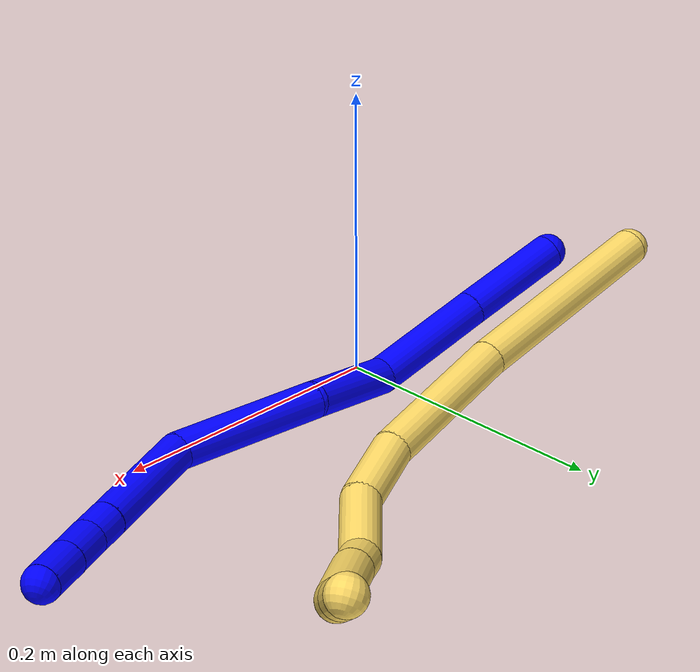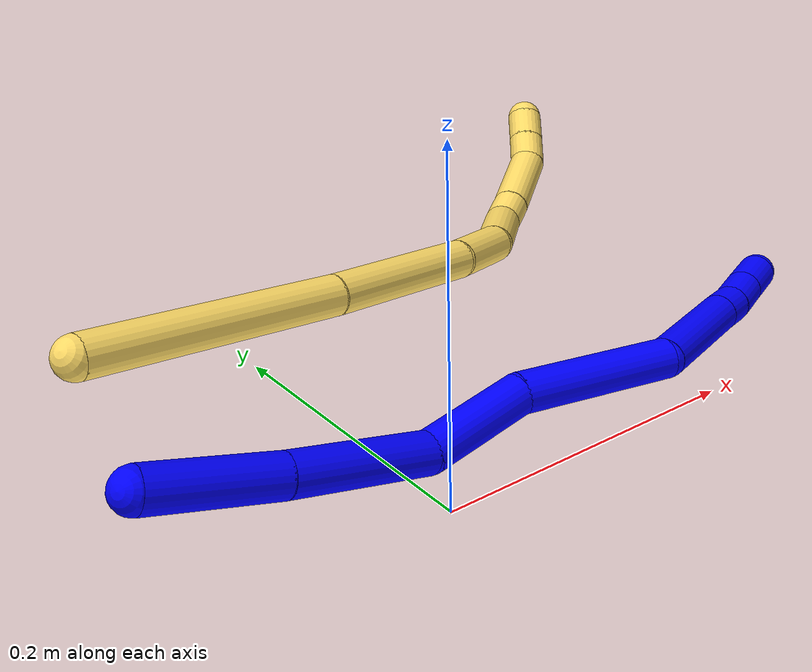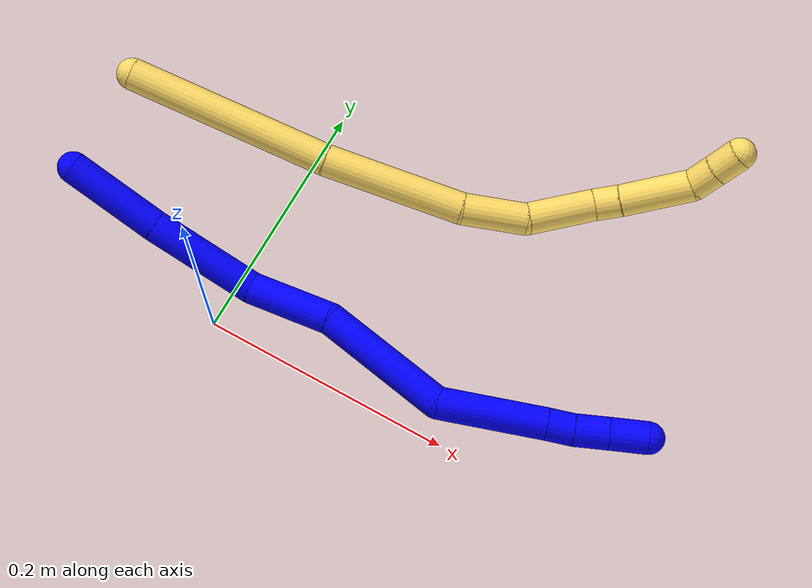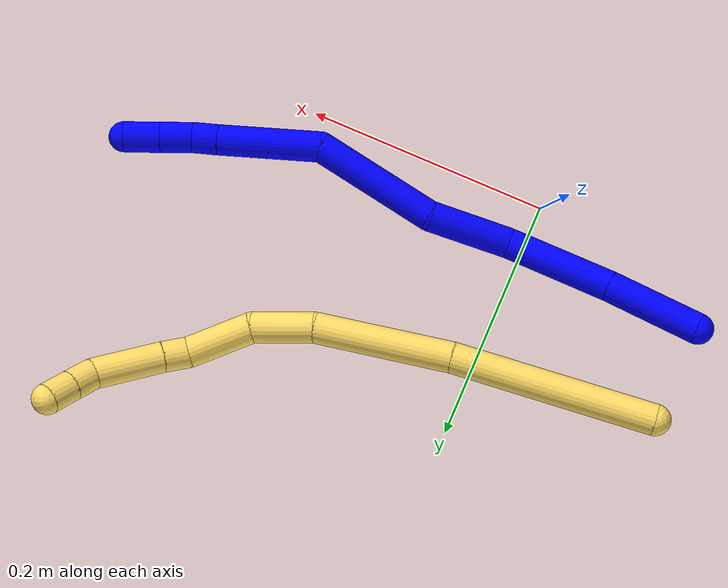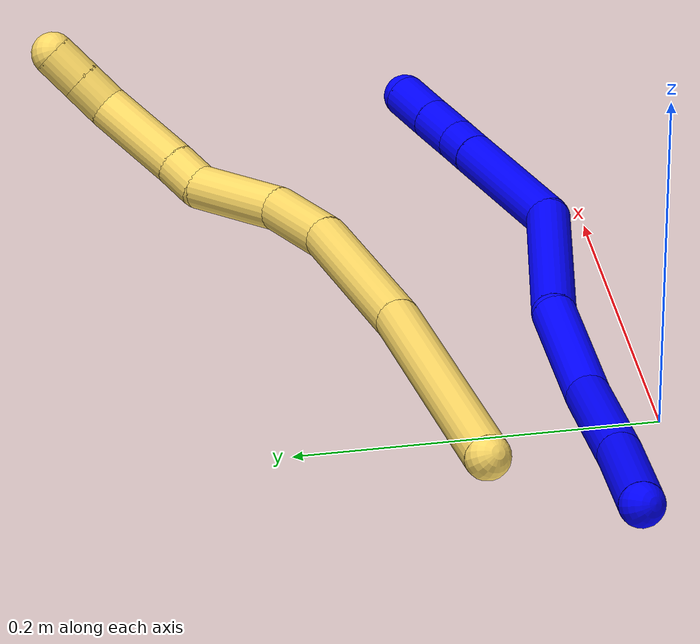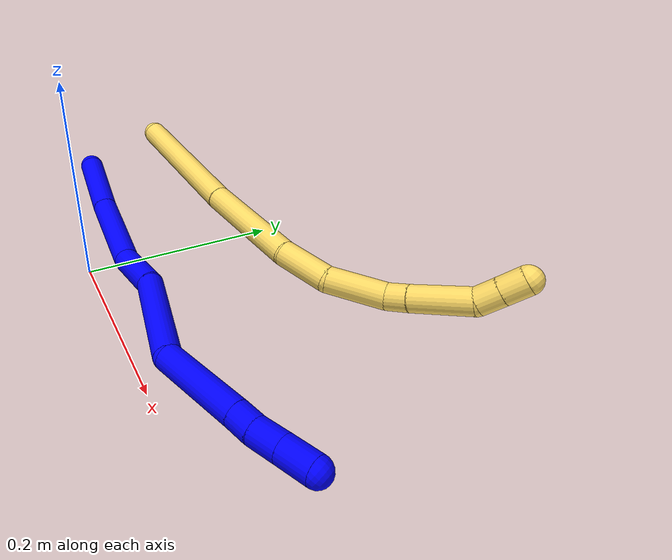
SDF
<sdf version="1.7">
 <world name="default">
  <model name="1">
   <static>0</static>
   <link name="1">
    <collision name="collision-cylinder-e_1_1_4">
     <pose>0.010834 0.017873 0.032506 -0.502709 0.284149 -0.073427</pose>
     <geometry><cylinder><radius>0.0125</radius><length>0.077291</length></cylinder></geometry>
     <surface>
      <friction><ode><mu>1.16</mu><mu2>1.16</mu2><slip1>0</slip1><slip2>0</slip2></ode></friction>
      <contact><ode><kp>1e+06</kp><kd>1</kd><max_vel>0</max_vel><min_depth>0.001</min_depth></ode></contact>
     </surface>
    </collision>
    <visual name="visual-cylinder-e_1_1_4">
     <pose>0.010834 0.017873 0.032506 -0.502709 0.284149 -0.073427</pose>
     <geometry><cylinder><radius>0.0125</radius><length>0.077291</length></cylinder></geometry>
     <material><ambient>0 0 1 1</ambient></material>
    </visual>
    <collision name="collision-cylinder-e_2_4_5">
     <pose>0.035583 0.054255 0.102959 -0.453812 0.318366 -0.074098</pose>
     <geometry><cylinder><radius>0.0125</radius><length>0.088908</length></cylinder></geometry>
     <surface>
      <friction><ode><mu>1.16</mu><mu2>1.16</mu2><slip1>0</slip1><slip2>0</slip2></ode></friction>
      <contact><ode><kp>1e+06</kp><kd>1</kd><max_vel>0</max_vel><min_depth>0.001</min_depth></ode></contact>
     </surface>
    </collision>
    <visual name="visual-cylinder-e_2_4_5">
     <pose>0.035583 0.054255 0.102959 -0.453812 0.318366 -0.074098</pose>
     <geometry><cylinder><radius>0.0125</radius><length>0.088908</length></cylinder></geometry>
     <material><ambient>0 0 1 1</ambient></material>
    </visual>
    <collision name="collision-cylinder-e_3_5_6">
     <pose>0.071445 0.081576 0.165996 -0.337769 0.689994 -0.122398</pose>
     <geometry><cylinder><radius>0.0125</radius><length>0.06896</length></cylinder></geometry>
     <surface>
      <friction><ode><mu>1.16</mu><mu2>1.16</mu2><slip1>0</slip1><slip2>0</slip2></ode></friction>
      <contact><ode><kp>1e+06</kp><kd>1</kd><max_vel>0</max_vel><min_depth>0.001</min_depth></ode></contact>
     </surface>
    </collision>
    <visual name="visual-cylinder-e_3_5_6">
     <pose>0.071445 0.081576 0.165996 -0.337769 0.689994 -0.122398</pose>
     <geometry><cylinder><radius>0.0125</radius><length>0.06896</length></cylinder></geometry>
     <material><ambient>0 0 1 1</ambient></material>
    </visual>
    <collision name="collision-cylinder-e_4_6_7">
     <pose>0.118508 0.117175 0.227926 -0.628688 0.503925 -0.167006</pose>
     <geometry><cylinder><radius>0.0125</radius><length>0.104029</length></cylinder></geometry>
     <surface>
      <friction><ode><mu>1.16</mu><mu2>1.16</mu2><slip1>0</slip1><slip2>0</slip2></ode></friction>
      <contact><ode><kp>1e+06</kp><kd>1</kd><max_vel>0</max_vel><min_depth>0.001</min_depth></ode></contact>
     </surface>
    </collision>
    <visual name="visual-cylinder-e_4_6_7">
     <pose>0.118508 0.117175 0.227926 -0.628688 0.503925 -0.167006</pose>
     <geometry><cylinder><radius>0.0125</radius><length>0.104029</length></cylinder></geometry>
     <material><ambient>0 0 1 1</ambient></material>
    </visual>
    <collision name="collision-cylinder-e_5_7_8">
     <pose>0.162561 0.146533 0.302039 -0.068882 0.469108 -0.016466</pose>
     <geometry><cylinder><radius>0.0125</radius><length>0.083773</length></cylinder></geometry>
     <surface>
      <friction><ode><mu>1.16</mu><mu2>1.16</mu2><slip1>0</slip1><slip2>0</slip2></ode></friction>
      <contact><ode><kp>1e+06</kp><kd>1</kd><max_vel>0</max_vel><min_depth>0.001</min_depth></ode></contact>
     </surface>
    </collision>
    <visual name="visual-cylinder-e_5_7_8">
     <pose>0.162561 0.146533 0.302039 -0.068882 0.469108 -0.016466</pose>
     <geometry><cylinder><radius>0.0125</radius><length>0.083773</length></cylinder></geometry>
     <material><ambient>0 0 1 1</ambient></material>
    </visual>
    <collision name="collision-cylinder-e_6_8_9">
     <pose>0.186131 0.150025 0.348695 -0.097809 0.456773 -0.022752</pose>
     <geometry><cylinder><radius>0.0125</radius><length>0.02101</length></cylinder></geometry>
     <surface>
      <friction><ode><mu>1.16</mu><mu2>1.16</mu2><slip1>0</slip1><slip2>0</slip2></ode></friction>
      <contact><ode><kp>1e+06</kp><kd>1</kd><max_vel>0</max_vel><min_depth>0.001</min_depth></ode></contact>
     </surface>
    </collision>
    <visual name="visual-cylinder-e_6_8_9">
     <pose>0.186131 0.150025 0.348695 -0.097809 0.456773 -0.022752</pose>
     <geometry><cylinder><radius>0.0125</radius><length>0.02101</length></cylinder></geometry>
     <material><ambient>0 0 1 1</ambient></material>
    </visual>
    <collision name="collision-cylinder-e_7_9_10">
     <pose>0.197442 0.150614 0.369515 0.028985 0.528293 0.00784</pose>
     <geometry><cylinder><radius>0.0125</radius><length>0.026497</length></cylinder></geometry>
     <surface>
      <friction><ode><mu>1.16</mu><mu2>1.16</mu2><slip1>0</slip1><slip2>0</slip2></ode></friction>
      <contact><ode><kp>1e+06</kp><kd>1</kd><max_vel>0</max_vel><min_depth>0.001</min_depth></ode></contact>
     </surface>
    </collision>
    <visual name="visual-cylinder-e_7_9_10">
     <pose>0.197442 0.150614 0.369515 0.028985 0.528293 0.00784</pose>
     <geometry><cylinder><radius>0.0125</radius><length>0.026497</length></cylinder></geometry>
     <material><ambient>0 0 1 1</ambient></material>
    </visual>
    <collision name="collision-cylinder-e_8_10_2">
     <pose>0.21162 0.15007 0.39367 0.016713 0.532795 0.004561</pose>
     <geometry><cylinder><radius>0.0125</radius><length>0.029533</length></cylinder></geometry>
     <surface>
      <friction><ode><mu>1.16</mu><mu2>1.16</mu2><slip1>0</slip1><slip2>0</slip2></ode></friction>
      <contact><ode><kp>1e+06</kp><kd>1</kd><max_vel>0</max_vel><min_depth>0.001</min_depth></ode></contact>
     </surface>
    </collision>
    <visual name="visual-cylinder-e_8_10_2">
     <pose>0.21162 0.15007 0.39367 0.016713 0.532795 0.004561</pose>
     <geometry><cylinder><radius>0.0125</radius><length>0.029533</length></cylinder></geometry>
     <material><ambient>0 0 1 1</ambient></material>
    </visual>
    <collision name="collision-sphere-2">
     <pose>0.219121 0.149857 0.406388 0 -0 0</pose>
     <geometry><sphere><radius>0.0125</radius></sphere></geometry>
     <surface>
      <friction><ode><mu>1.16</mu><mu2>1.16</mu2><slip1>0</slip1><slip2>0</slip2></ode></friction>
      <contact><ode><kp>1e+06</kp><kd>1</kd><max_vel>0</max_vel><min_depth>0.001</min_depth></ode></contact>
     </surface>
    </collision>
    <visual name="visual-sphere-2">
     <pose>0.219121 0.149857 0.406388 0 -0 0</pose>
     <geometry><sphere><radius>0.0125</radius></sphere></geometry>
     <material><ambient>0 0 1 1</ambient></material>
    </visual>
    <collision name="collision-sphere-10">
     <pose>0.20412 0.150282 0.380953 0 -0 0</pose>
     <geometry><sphere><radius>0.0125</radius></sphere></geometry>
     <surface>
      <friction><ode><mu>1.16</mu><mu2>1.16</mu2><slip1>0</slip1><slip2>0</slip2></ode></friction>
      <contact><ode><kp>1e+06</kp><kd>1</kd><max_vel>0</max_vel><min_depth>0.001</min_depth></ode></contact>
     </surface>
    </collision>
    <visual name="visual-sphere-10">
     <pose>0.20412 0.150282 0.380953 0 -0 0</pose>
     <geometry><sphere><radius>0.0125</radius></sphere></geometry>
     <material><ambient>0 0 1 1</ambient></material>
    </visual>
    <collision name="collision-sphere-9">
     <pose>0.190764 0.150946 0.358078 0 -0 0</pose>
     <geometry><sphere><radius>0.0125</radius></sphere></geometry>
     <surface>
      <friction><ode><mu>1.16</mu><mu2>1.16</mu2><slip1>0</slip1><slip2>0</slip2></ode></friction>
      <contact><ode><kp>1e+06</kp><kd>1</kd><max_vel>0</max_vel><min_depth>0.001</min_depth></ode></contact>
     </surface>
    </collision>
    <visual name="visual-sphere-9">
     <pose>0.190764 0.150946 0.358078 0 -0 0</pose>
     <geometry><sphere><radius>0.0125</radius></sphere></geometry>
     <material><ambient>0 0 1 1</ambient></material>
    </visual>
    <collision name="collision-sphere-4">
     <pose>0.021668 0.035746 0.065013 0 -0 0</pose>
     <geometry><sphere><radius>0.0125</radius></sphere></geometry>
     <surface>
      <friction><ode><mu>1.16</mu><mu2>1.16</mu2><slip1>0</slip1><slip2>0</slip2></ode></friction>
      <contact><ode><kp>1e+06</kp><kd>1</kd><max_vel>0</max_vel><min_depth>0.001</min_depth></ode></contact>
     </surface>
    </collision>
    <visual name="visual-sphere-4">
     <pose>0.021668 0.035746 0.065013 0 -0 0</pose>
     <geometry><sphere><radius>0.0125</radius></sphere></geometry>
     <material><ambient>0 0 1 1</ambient></material>
    </visual>
    <collision name="collision-sphere-1">
     <geometry><sphere><radius>0.0125</radius></sphere></geometry>
     <surface>
      <friction><ode><mu>1.16</mu><mu2>1.16</mu2><slip1>0</slip1><slip2>0</slip2></ode></friction>
      <contact><ode><kp>1e+06</kp><kd>1</kd><max_vel>0</max_vel><min_depth>0.001</min_depth></ode></contact>
     </surface>
    </collision>
    <visual name="visual-sphere-1">
     <geometry><sphere><radius>0.0125</radius></sphere></geometry>
     <material><ambient>0 0 1 1</ambient></material>
    </visual>
    <collision name="collision-sphere-8">
     <pose>0.181497 0.149104 0.339312 0 -0 0</pose>
     <geometry><sphere><radius>0.0125</radius></sphere></geometry>
     <surface>
      <friction><ode><mu>1.16</mu><mu2>1.16</mu2><slip1>0</slip1><slip2>0</slip2></ode></friction>
      <contact><ode><kp>1e+06</kp><kd>1</kd><max_vel>0</max_vel><min_depth>0.001</min_depth></ode></contact>
     </surface>
    </collision>
    <visual name="visual-sphere-8">
     <pose>0.181497 0.149104 0.339312 0 -0 0</pose>
     <geometry><sphere><radius>0.0125</radius></sphere></geometry>
     <material><ambient>0 0 1 1</ambient></material>
    </visual>
    <collision name="collision-sphere-5">
     <pose>0.049497 0.072764 0.140906 0 -0 0</pose>
     <geometry><sphere><radius>0.0125</radius></sphere></geometry>
     <surface>
      <friction><ode><mu>1.16</mu><mu2>1.16</mu2><slip1>0</slip1><slip2>0</slip2></ode></friction>
      <contact><ode><kp>1e+06</kp><kd>1</kd><max_vel>0</max_vel><min_depth>0.001</min_depth></ode></contact>
     </surface>
    </collision>
    <visual name="visual-sphere-5">
     <pose>0.049497 0.072764 0.140906 0 -0 0</pose>
     <geometry><sphere><radius>0.0125</radius></sphere></geometry>
     <material><ambient>0 0 1 1</ambient></material>
    </visual>
    <collision name="collision-sphere-6">
     <pose>0.093393 0.090388 0.191086 0 -0 0</pose>
     <geometry><sphere><radius>0.0125</radius></sphere></geometry>
     <surface>
      <friction><ode><mu>1.16</mu><mu2>1.16</mu2><slip1>0</slip1><slip2>0</slip2></ode></friction>
      <contact><ode><kp>1e+06</kp><kd>1</kd><max_vel>0</max_vel><min_depth>0.001</min_depth></ode></contact>
     </surface>
    </collision>
    <visual name="visual-sphere-6">
     <pose>0.093393 0.090388 0.191086 0 -0 0</pose>
     <geometry><sphere><radius>0.0125</radius></sphere></geometry>
     <material><ambient>0 0 1 1</ambient></material>
    </visual>
    <collision name="collision-sphere-7">
     <pose>0.143624 0.143961 0.264766 0 -0 0</pose>
     <geometry><sphere><radius>0.0125</radius></sphere></geometry>
     <surface>
      <friction><ode><mu>1.16</mu><mu2>1.16</mu2><slip1>0</slip1><slip2>0</slip2></ode></friction>
      <contact><ode><kp>1e+06</kp><kd>1</kd><max_vel>0</max_vel><min_depth>0.001</min_depth></ode></contact>
     </surface>
    </collision>
    <visual name="visual-sphere-7">
     <pose>0.143624 0.143961 0.264766 0 -0 0</pose>
     <geometry><sphere><radius>0.0125</radius></sphere></geometry>
     <material><ambient>0 0 1 1</ambient></material>
    </visual>
    <inertial>
     <pose>0.100532 0.095741 0.20174 0 -0 0</pose>
     <mass>0.5</mass>
     <inertia>
      <ixx>0.000251</ixx>
      <ixy>0</ixy>
      <ixz>0</ixz>
      <iyy>0.000251</iyy>
      <iyz>0</iyz>
      <izz>-0.000199</izz>
     </inertia>
    </inertial>
   </link>
   <pose>-0.147573 0.043227 0.053307 -2.70166 -1.01964 -0.004393</pose>
  </model>
  <model name="5">
   <static>0</static>
   <link name="5">
    <collision name="collision-cylinder-e_1_1_4">
     <pose>0.024584 0.043221 0.064473 -0.59056 0.30673 -0.093968</pose>
     <geometry><cylinder><radius>0.0125</radius><length>0.162839</length></cylinder></geometry>
     <surface>
      <friction><ode><mu>1.16</mu><mu2>1.16</mu2><slip1>0</slip1><slip2>0</slip2></ode></friction>
      <contact><ode><kp>1e+06</kp><kd>1</kd><max_vel>0</max_vel><min_depth>0.001</min_depth></ode></contact>
     </surface>
    </collision>
    <visual name="visual-cylinder-e_1_1_4">
     <pose>0.024584 0.043221 0.064473 -0.59056 0.30673 -0.093968</pose>
     <geometry><cylinder><radius>0.0125</radius><length>0.162839</length></cylinder></geometry>
     <material><ambient>1 0.858824 0.4 1</ambient></material>
    </visual>
    <collision name="collision-cylinder-e_2_4_5">
     <pose>0.068555 0.112245 0.17389 -0.521177 0.357974 -0.096412</pose>
     <geometry><cylinder><radius>0.0125</radius><length>0.110665</length></cylinder></geometry>
     <surface>
      <friction><ode><mu>1.16</mu><mu2>1.16</mu2><slip1>0</slip1><slip2>0</slip2></ode></friction>
      <contact><ode><kp>1e+06</kp><kd>1</kd><max_vel>0</max_vel><min_depth>0.001</min_depth></ode></contact>
     </surface>
    </collision>
    <visual name="visual-cylinder-e_2_4_5">
     <pose>0.068555 0.112245 0.17389 -0.521177 0.357974 -0.096412</pose>
     <geometry><cylinder><radius>0.0125</radius><length>0.110665</length></cylinder></geometry>
     <material><ambient>1 0.858824 0.4 1</ambient></material>
    </visual>
    <collision name="collision-cylinder-e_3_5_6">
     <pose>0.098979 0.145166 0.240351 -0.319448 0.453182 -0.074247</pose>
     <geometry><cylinder><radius>0.0125</radius><length>0.050415</length></cylinder></geometry>
     <surface>
      <friction><ode><mu>1.16</mu><mu2>1.16</mu2><slip1>0</slip1><slip2>0</slip2></ode></friction>
      <contact><ode><kp>1e+06</kp><kd>1</kd><max_vel>0</max_vel><min_depth>0.001</min_depth></ode></contact>
     </surface>
    </collision>
    <visual name="visual-cylinder-e_3_5_6">
     <pose>0.098979 0.145166 0.240351 -0.319448 0.453182 -0.074247</pose>
     <geometry><cylinder><radius>0.0125</radius><length>0.050415</length></cylinder></geometry>
     <material><ambient>1 0.858824 0.4 1</ambient></material>
    </visual>
    <collision name="collision-cylinder-e_4_6_7">
     <pose>0.126686 0.150975 0.28382 0.05951 0.648644 0.020012</pose>
     <geometry><cylinder><radius>0.0125</radius><length>0.055191</length></cylinder></geometry>
     <surface>
      <friction><ode><mu>1.16</mu><mu2>1.16</mu2><slip1>0</slip1><slip2>0</slip2></ode></friction>
      <contact><ode><kp>1e+06</kp><kd>1</kd><max_vel>0</max_vel><min_depth>0.001</min_depth></ode></contact>
     </surface>
    </collision>
    <visual name="visual-cylinder-e_4_6_7">
     <pose>0.126686 0.150975 0.28382 0.05951 0.648644 0.020012</pose>
     <geometry><cylinder><radius>0.0125</radius><length>0.055191</length></cylinder></geometry>
     <material><ambient>1 0.858824 0.4 1</ambient></material>
    </visual>
    <collision name="collision-cylinder-e_5_7_8">
     <pose>0.151682 0.15241 0.311917 -0.419757 0.89093 -0.202722</pose>
     <geometry><cylinder><radius>0.0125</radius><length>0.021409</length></cylinder></geometry>
     <surface>
      <friction><ode><mu>1.16</mu><mu2>1.16</mu2><slip1>0</slip1><slip2>0</slip2></ode></friction>
      <contact><ode><kp>1e+06</kp><kd>1</kd><max_vel>0</max_vel><min_depth>0.001</min_depth></ode></contact>
     </surface>
    </collision>
    <visual name="visual-cylinder-e_5_7_8">
     <pose>0.151682 0.15241 0.311917 -0.419757 0.89093 -0.202722</pose>
     <geometry><cylinder><radius>0.0125</radius><length>0.021409</length></cylinder></geometry>
     <material><ambient>1 0.858824 0.4 1</ambient></material>
    </visual>
    <collision name="collision-cylinder-e_6_8_9">
     <pose>0.182471 0.160867 0.333832 -0.347677 0.929457 -0.175633</pose>
     <geometry><cylinder><radius>0.0125</radius><length>0.056072</length></cylinder></geometry>
     <surface>
      <friction><ode><mu>1.16</mu><mu2>1.16</mu2><slip1>0</slip1><slip2>0</slip2></ode></friction>
      <contact><ode><kp>1e+06</kp><kd>1</kd><max_vel>0</max_vel><min_depth>0.001</min_depth></ode></contact>
     </surface>
    </collision>
    <visual name="visual-cylinder-e_6_8_9">
     <pose>0.182471 0.160867 0.333832 -0.347677 0.929457 -0.175633</pose>
     <geometry><cylinder><radius>0.0125</radius><length>0.056072</length></cylinder></geometry>
     <material><ambient>1 0.858824 0.4 1</ambient></material>
    </visual>
    <collision name="collision-cylinder-e_7_9_10">
     <pose>0.215358 0.167311 0.351562 -0.356269 1.3727 -0.292878</pose>
     <geometry><cylinder><radius>0.0125</radius><length>0.021259</length></cylinder></geometry>
     <surface>
      <friction><ode><mu>1.16</mu><mu2>1.16</mu2><slip1>0</slip1><slip2>0</slip2></ode></friction>
      <contact><ode><kp>1e+06</kp><kd>1</kd><max_vel>0</max_vel><min_depth>0.001</min_depth></ode></contact>
     </surface>
    </collision>
    <visual name="visual-cylinder-e_7_9_10">
     <pose>0.215358 0.167311 0.351562 -0.356269 1.3727 -0.292878</pose>
     <geometry><cylinder><radius>0.0125</radius><length>0.021259</length></cylinder></geometry>
     <material><ambient>1 0.858824 0.4 1</ambient></material>
    </visual>
    <collision name="collision-cylinder-e_8_10_2">
     <pose>0.236665 0.168721 0.355445 -0.339871 1.38567 -0.282976</pose>
     <geometry><cylinder><radius>0.0125</radius><length>0.02215</length></cylinder></geometry>
     <surface>
      <friction><ode><mu>1.16</mu><mu2>1.16</mu2><slip1>0</slip1><slip2>0</slip2></ode></friction>
      <contact><ode><kp>1e+06</kp><kd>1</kd><max_vel>0</max_vel><min_depth>0.001</min_depth></ode></contact>
     </surface>
    </collision>
    <visual name="visual-cylinder-e_8_10_2">
     <pose>0.236665 0.168721 0.355445 -0.339871 1.38567 -0.282976</pose>
     <geometry><cylinder><radius>0.0125</radius><length>0.02215</length></cylinder></geometry>
     <material><ambient>1 0.858824 0.4 1</ambient></material>
    </visual>
    <collision name="collision-sphere-2">
     <pose>0.247551 0.1694 0.357367 0 -0 0</pose>
     <geometry><sphere><radius>0.0125</radius></sphere></geometry>
     <surface>
      <friction><ode><mu>1.16</mu><mu2>1.16</mu2><slip1>0</slip1><slip2>0</slip2></ode></friction>
      <contact><ode><kp>1e+06</kp><kd>1</kd><max_vel>0</max_vel><min_depth>0.001</min_depth></ode></contact>
     </surface>
    </collision>
    <visual name="visual-sphere-2">
     <pose>0.247551 0.1694 0.357367 0 -0 0</pose>
     <geometry><sphere><radius>0.0125</radius></sphere></geometry>
     <material><ambient>1 0.858824 0.4 1</ambient></material>
    </visual>
    <collision name="collision-sphere-10">
     <pose>0.22578 0.168041 0.353523 0 -0 0</pose>
     <geometry><sphere><radius>0.0125</radius></sphere></geometry>
     <surface>
      <friction><ode><mu>1.16</mu><mu2>1.16</mu2><slip1>0</slip1><slip2>0</slip2></ode></friction>
      <contact><ode><kp>1e+06</kp><kd>1</kd><max_vel>0</max_vel><min_depth>0.001</min_depth></ode></contact>
     </surface>
    </collision>
    <visual name="visual-sphere-10">
     <pose>0.22578 0.168041 0.353523 0 -0 0</pose>
     <geometry><sphere><radius>0.0125</radius></sphere></geometry>
     <material><ambient>1 0.858824 0.4 1</ambient></material>
    </visual>
    <collision name="collision-sphere-9">
     <pose>0.204936 0.166582 0.349602 0 -0 0</pose>
     <geometry><sphere><radius>0.0125</radius></sphere></geometry>
     <surface>
      <friction><ode><mu>1.16</mu><mu2>1.16</mu2><slip1>0</slip1><slip2>0</slip2></ode></friction>
      <contact><ode><kp>1e+06</kp><kd>1</kd><max_vel>0</max_vel><min_depth>0.001</min_depth></ode></contact>
     </surface>
    </collision>
    <visual name="visual-sphere-9">
     <pose>0.204936 0.166582 0.349602 0 -0 0</pose>
     <geometry><sphere><radius>0.0125</radius></sphere></geometry>
     <material><ambient>1 0.858824 0.4 1</ambient></material>
    </visual>
    <collision name="collision-sphere-4">
     <pose>0.049168 0.086441 0.128946 0 -0 0</pose>
     <geometry><sphere><radius>0.0125</radius></sphere></geometry>
     <surface>
      <friction><ode><mu>1.16</mu><mu2>1.16</mu2><slip1>0</slip1><slip2>0</slip2></ode></friction>
      <contact><ode><kp>1e+06</kp><kd>1</kd><max_vel>0</max_vel><min_depth>0.001</min_depth></ode></contact>
     </surface>
    </collision>
    <visual name="visual-sphere-4">
     <pose>0.049168 0.086441 0.128946 0 -0 0</pose>
     <geometry><sphere><radius>0.0125</radius></sphere></geometry>
     <material><ambient>1 0.858824 0.4 1</ambient></material>
    </visual>
    <collision name="collision-sphere-1">
     <geometry><sphere><radius>0.0125</radius></sphere></geometry>
     <surface>
      <friction><ode><mu>1.16</mu><mu2>1.16</mu2><slip1>0</slip1><slip2>0</slip2></ode></friction>
      <contact><ode><kp>1e+06</kp><kd>1</kd><max_vel>0</max_vel><min_depth>0.001</min_depth></ode></contact>
     </surface>
    </collision>
    <visual name="visual-sphere-1">
     <geometry><sphere><radius>0.0125</radius></sphere></geometry>
     <material><ambient>1 0.858824 0.4 1</ambient></material>
    </visual>
    <collision name="collision-sphere-8">
     <pose>0.160006 0.155152 0.318063 0 -0 0</pose>
     <geometry><sphere><radius>0.0125</radius></sphere></geometry>
     <surface>
      <friction><ode><mu>1.16</mu><mu2>1.16</mu2><slip1>0</slip1><slip2>0</slip2></ode></friction>
      <contact><ode><kp>1e+06</kp><kd>1</kd><max_vel>0</max_vel><min_depth>0.001</min_depth></ode></contact>
     </surface>
    </collision>
    <visual name="visual-sphere-8">
     <pose>0.160006 0.155152 0.318063 0 -0 0</pose>
     <geometry><sphere><radius>0.0125</radius></sphere></geometry>
     <material><ambient>1 0.858824 0.4 1</ambient></material>
    </visual>
    <collision name="collision-sphere-5">
     <pose>0.087943 0.138048 0.218834 0 -0 0</pose>
     <geometry><sphere><radius>0.0125</radius></sphere></geometry>
     <surface>
      <friction><ode><mu>1.16</mu><mu2>1.16</mu2><slip1>0</slip1><slip2>0</slip2></ode></friction>
      <contact><ode><kp>1e+06</kp><kd>1</kd><max_vel>0</max_vel><min_depth>0.001</min_depth></ode></contact>
     </surface>
    </collision>
    <visual name="visual-sphere-5">
     <pose>0.087943 0.138048 0.218834 0 -0 0</pose>
     <geometry><sphere><radius>0.0125</radius></sphere></geometry>
     <material><ambient>1 0.858824 0.4 1</ambient></material>
    </visual>
    <collision name="collision-sphere-6">
     <pose>0.110016 0.152283 0.261867 0 -0 0</pose>
     <geometry><sphere><radius>0.0125</radius></sphere></geometry>
     <surface>
      <friction><ode><mu>1.16</mu><mu2>1.16</mu2><slip1>0</slip1><slip2>0</slip2></ode></friction>
      <contact><ode><kp>1e+06</kp><kd>1</kd><max_vel>0</max_vel><min_depth>0.001</min_depth></ode></contact>
     </surface>
    </collision>
    <visual name="visual-sphere-6">
     <pose>0.110016 0.152283 0.261867 0 -0 0</pose>
     <geometry><sphere><radius>0.0125</radius></sphere></geometry>
     <material><ambient>1 0.858824 0.4 1</ambient></material>
    </visual>
    <collision name="collision-sphere-7">
     <pose>0.143357 0.149667 0.305772 0 -0 0</pose>
     <geometry><sphere><radius>0.0125</radius></sphere></geometry>
     <surface>
      <friction><ode><mu>1.16</mu><mu2>1.16</mu2><slip1>0</slip1><slip2>0</slip2></ode></friction>
      <contact><ode><kp>1e+06</kp><kd>1</kd><max_vel>0</max_vel><min_depth>0.001</min_depth></ode></contact>
     </surface>
    </collision>
    <visual name="visual-sphere-7">
     <pose>0.143357 0.149667 0.305772 0 -0 0</pose>
     <geometry><sphere><radius>0.0125</radius></sphere></geometry>
     <material><ambient>1 0.858824 0.4 1</ambient></material>
    </visual>
    <inertial>
     <pose>0.093742 0.109375 0.196534 0 -0 0</pose>
     <mass>0.5</mass>
     <inertia>
      <ixx>0.000466</ixx>
      <ixy>0</ixy>
      <ixz>0</ixz>
      <iyy>0.000429</iyy>
      <iyz>0</iyz>
      <izz>-0.000413</izz>
     </inertia>
    </inertial>
   </link>
   <pose>-0.137987 0.122138 0.08537 2.66355 -0.767008 1.1052</pose>
  </model>
 </world>
</sdf>
